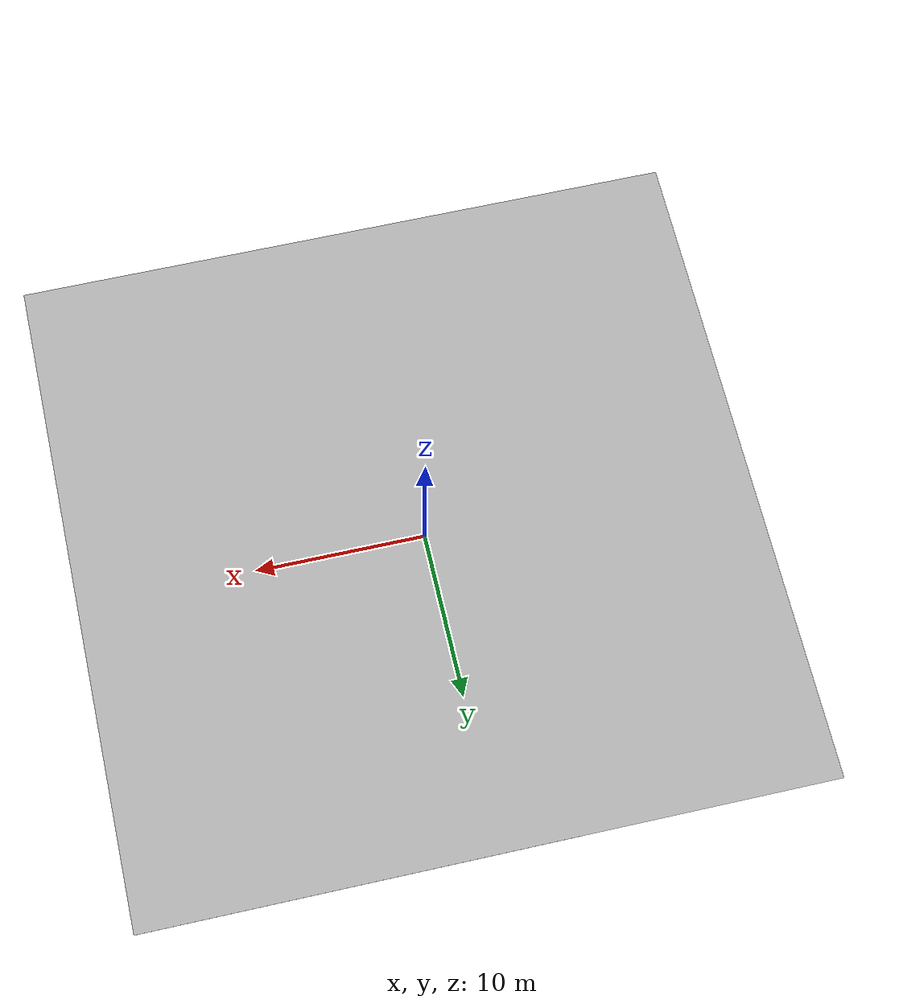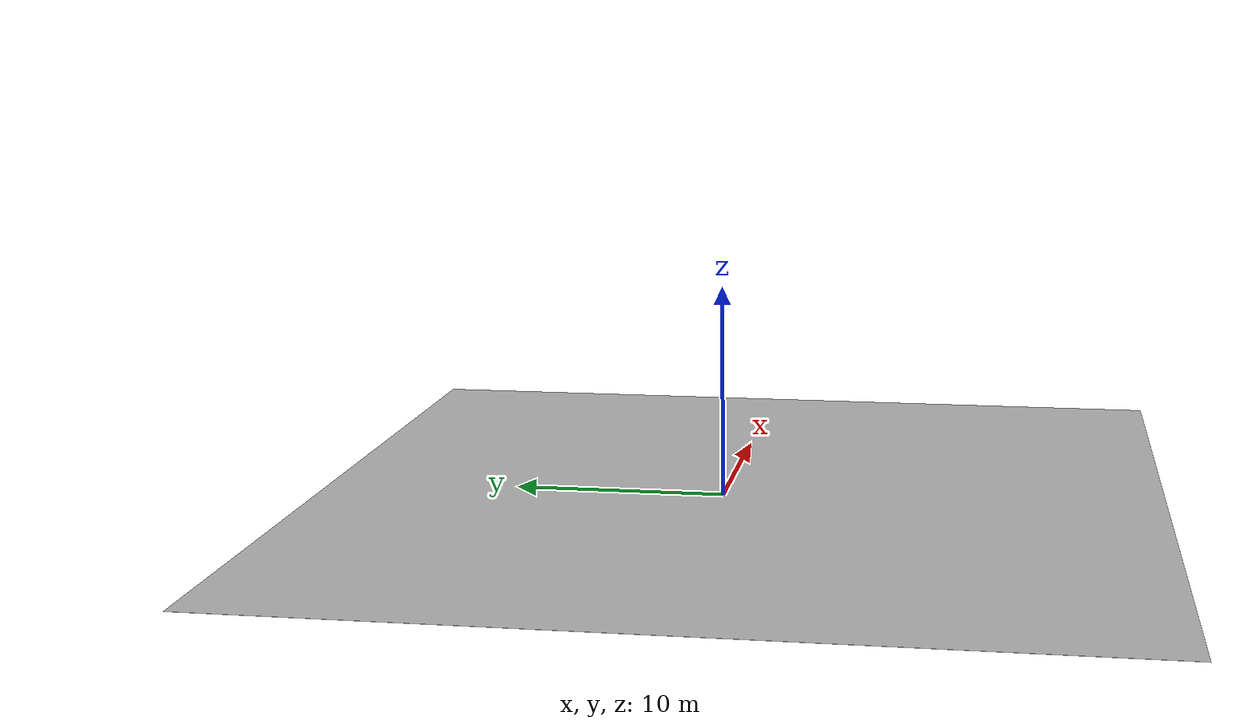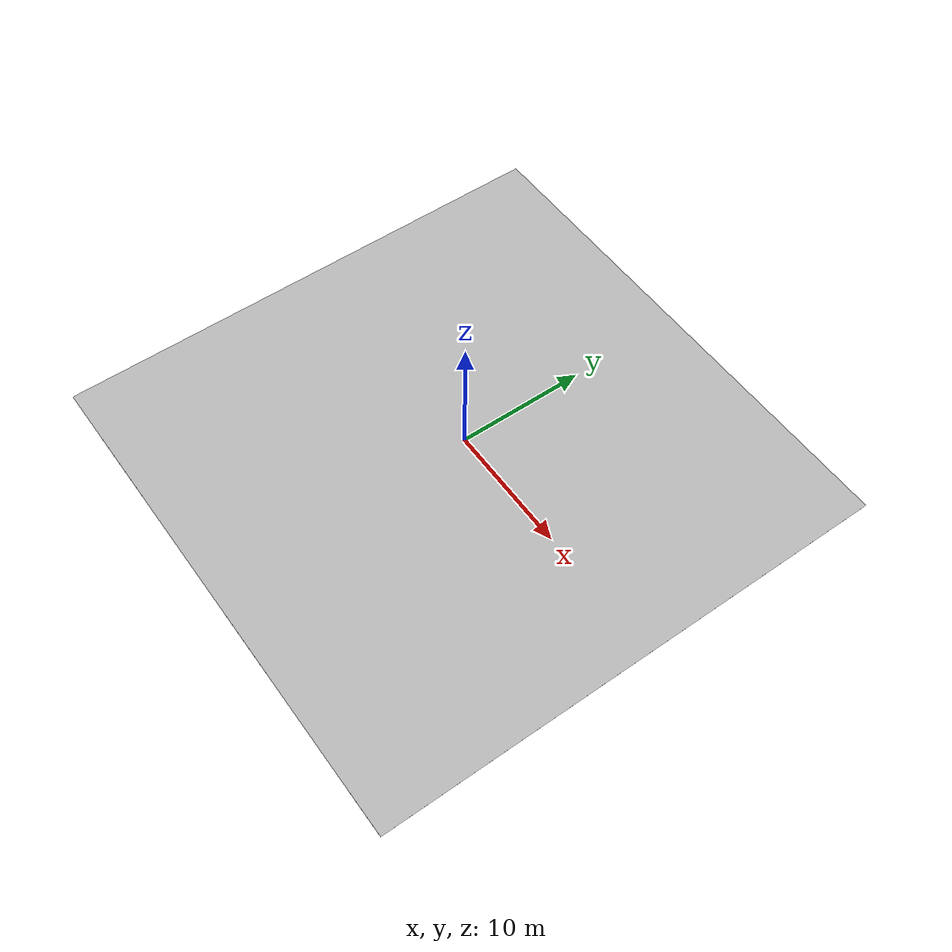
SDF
<?xml version="1.0" ?>
<sdf version='1.6'>
  <world name='default'>
    <scene>
      <shadows>0</shadows>
      <grid>false</grid>
      <origin_visual>false</origin_visual>
    </scene>
    <light name='sun' type='directional'>
      <cast_shadows>0</cast_shadows>
      <pose frame=''>0 0 5 0 -0 0</pose>
      <diffuse>0.8 0.8 0.8 1</diffuse>
      <specular>0.1 0.1 0.1 1</specular>
      <attenuation>
        <range>1000</range>
        <constant>0.9</constant>
        <linear>0.01</linear>
        <quadratic>0.001</quadratic>
      </attenuation>
      <direction>-0.5 0.5 -1</direction>
    </light>
    <physics name='default_physics' default='0' type='ode'>
      <max_step_size>0.001</max_step_size>
      <real_time_factor>1</real_time_factor>
      <real_time_update_rate>1000</real_time_update_rate>
    </physics>
    <scene>
      <ambient>0.4 0.4 0.4 1</ambient>
      <background>0.7 0.7 0.7 1</background>
      <shadows>1</shadows>
    </scene>
    <spherical_coordinates>
      <surface_model>EARTH_WGS84</surface_model>
      <latitude_deg>0</latitude_deg>
      <longitude_deg>0</longitude_deg>
      <elevation>0</elevation>
      <heading_deg>0</heading_deg>
    </spherical_coordinates>

    <model name='Floor'>
      <link name='main'>
        <pose frame=''>0 0 0.01 0 -0 0</pose>
        <collision name='main_Collision'>
          <geometry>
            <box>
              <size>40 40 0.01</size>
            </box>
          </geometry>
          <max_contacts>10</max_contacts>
          <surface>
            <contact>
              <ode/>
            </contact>
            <bounce/>
            <friction>
              <torsional>
                <ode/>
              </torsional>
              <ode/>
            </friction>
          </surface>
        </collision>
        <visual name='main_Visual'>
          <geometry>
            <box>
              <size>40 40 0.01</size>
            </box>
          </geometry>
          <material>
            <script>
              <uri>model://Floor/materials/scripts</uri>
              <uri>model://Floor/materials/textures</uri>
              <name>floor</name>
            </script>
          </material>
        </visual>
        <self_collide>0</self_collide>
        <kinematic>0</kinematic>
      </link>
      <static>1</static>
      <pose frame=''>0.427393 -0.806766 0 0 -0 0</pose>
    </model>
  </world>
</sdf>
